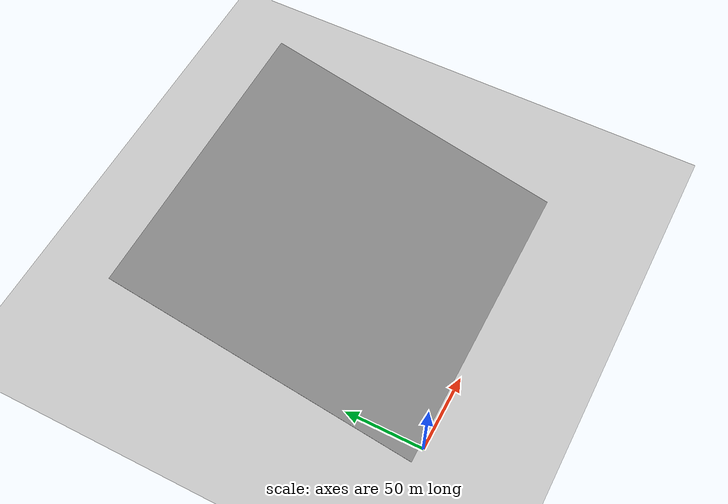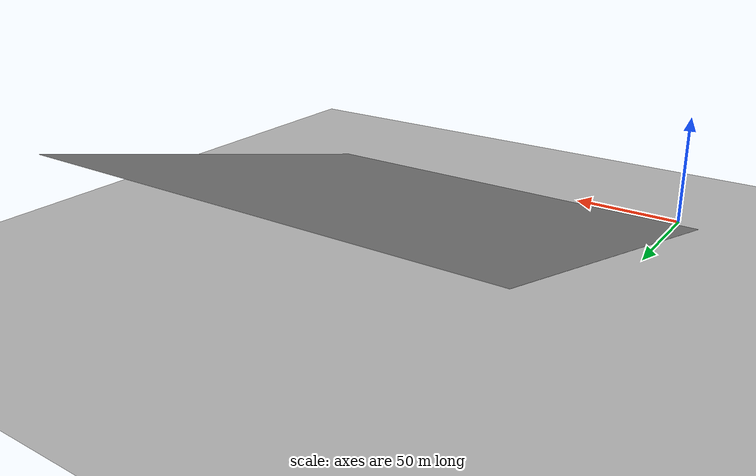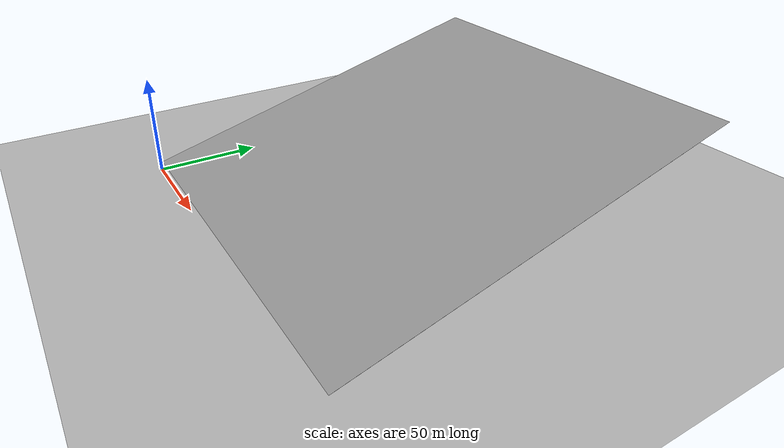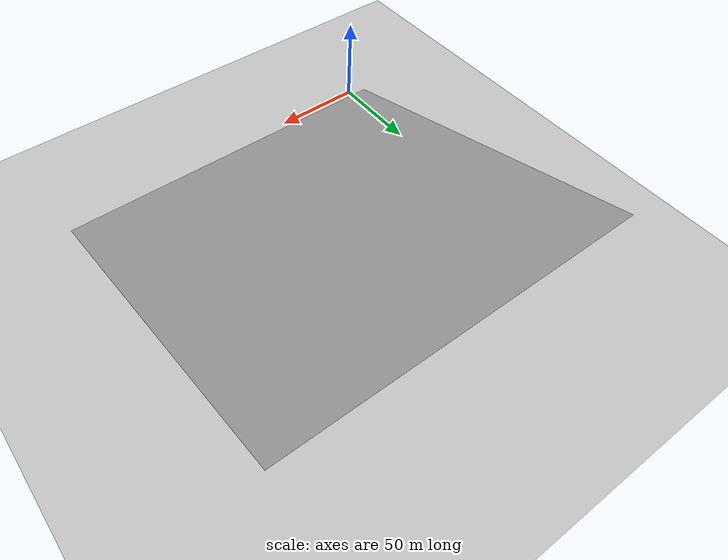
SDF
<?xml version="1.0" ?>
<sdf version="1.5">
  <world name="default">
    <!-- A global light source -->
    <include>
      <uri>model://sun</uri>
    </include>
    <!-- A ground plane -->
    <include>
      <uri>model://ground_plane</uri>
    </include>
    <!-- A slope -->
   <model name="box">
      <static>true</static>

      <pose>90 99 25.3 0.26 0.0 0</pose>
      <link name="link">
        <collision name="collision">
          <geometry>
            <box>
              <size>200 200 .1</size>
            </box>
          </geometry>
        </collision>
        <visual name="visual">
<material>
      <script>
        <uri>file://media/materials/scripts/gazebo.material</uri>
        <name>Gazebo/Grey</name>
      </script>
    </material>
          <geometry>
            <box>
              <size>200 200  .1</size>
            </box>
          </geometry>
        </visual>
      </link>
    </model>

  </world>
</sdf>
